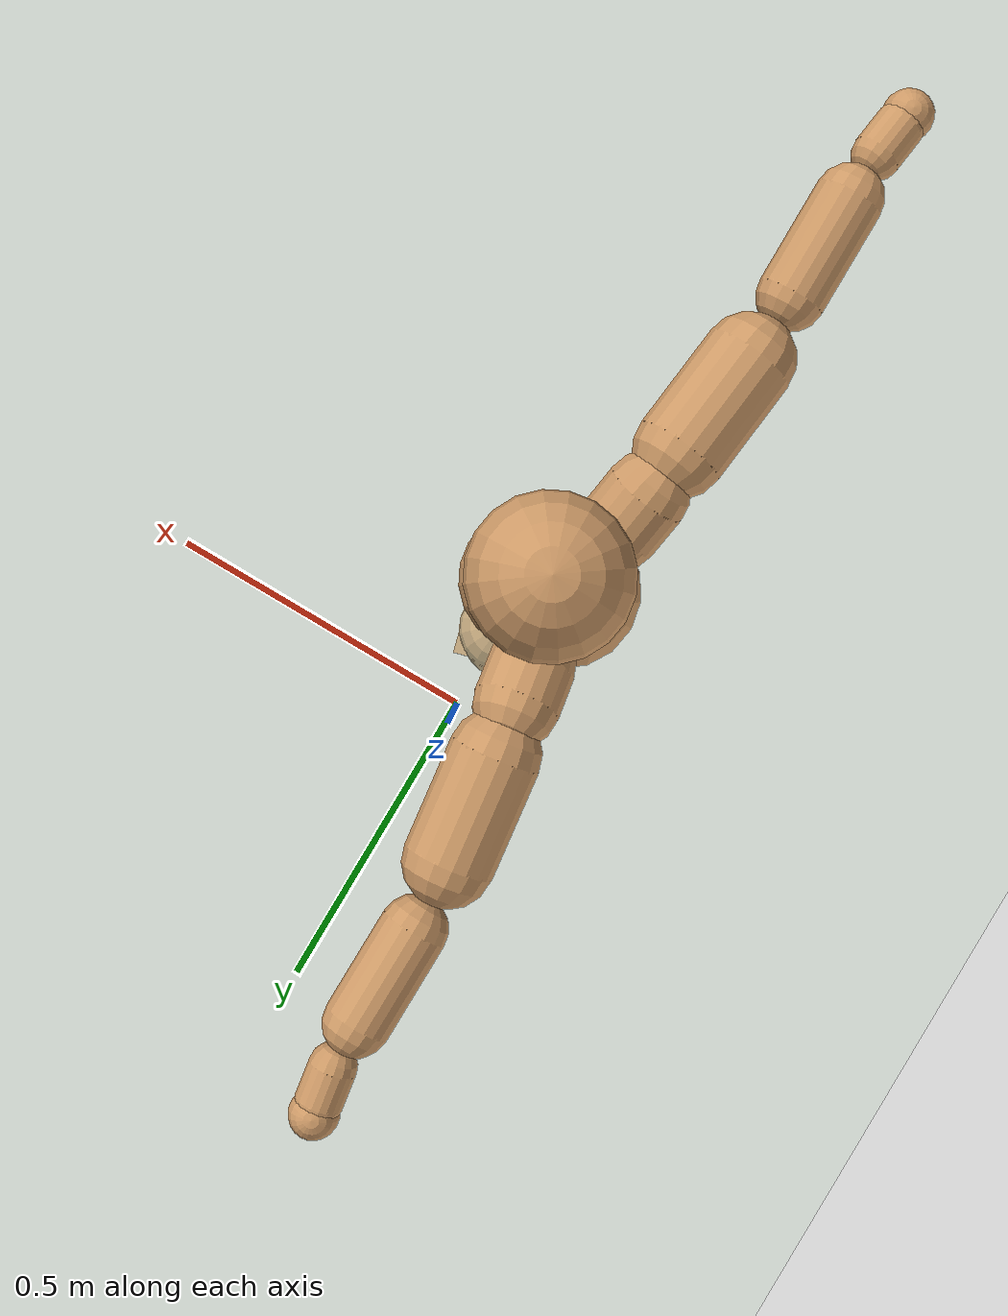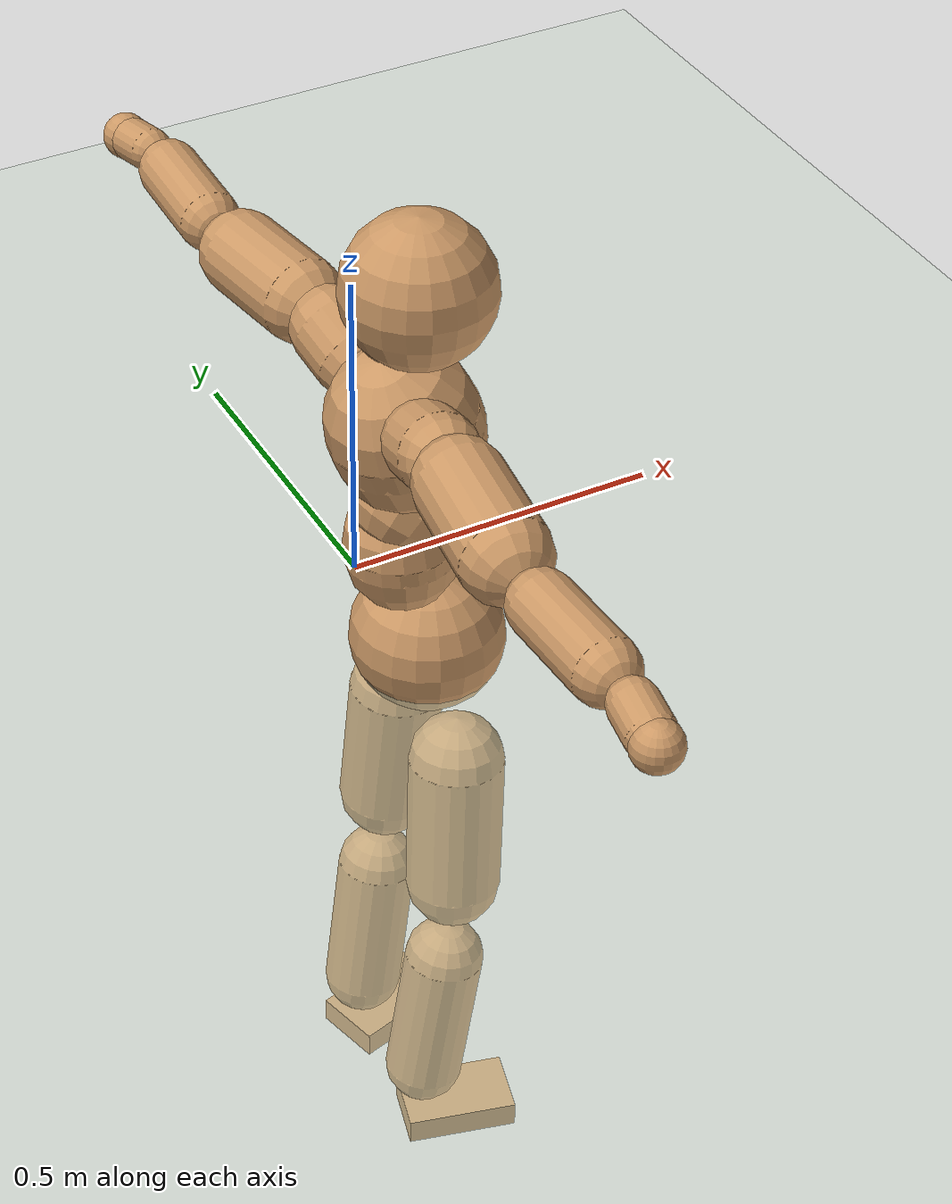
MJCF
<mujoco model="humanoid">
  <compiler coordinate="local"/>
  <default>
    <joint damping="0.0" armature="0.01" stiffness="0.0" limited="true"/>
    <geom conaffinity="1" condim="3" contype="7" margin="0.001" rgba="0.8 0.6 .4 1"/>
  </default>
  <asset>
    <texture type="skybox" builtin="gradient" rgb1=".4 .5 .6" rgb2="0 0 0" width="100" height="100"/>
    <texture builtin="flat" height="1278" mark="cross" markrgb="1 1 1" name="texgeom" random="0.01" rgb1="0.8 0.6 0.4" rgb2="0.8 0.6 0.4" type="cube" width="127"/>
    <texture builtin="checker" height="100" name="texplane" rgb1="0 0 0" rgb2="0.8 0.8 0.8" type="2d" width="100"/>
    <material name="MatPlane" reflectance="0.5" shininess="1" specular="1" texrepeat="60 60" texture="texplane"/>
    <material name="geom" texture="texgeom" texuniform="true"/>
  </asset>
  <worldbody>
    <light cutoff="100" diffuse="1 1 1" dir="-0 0 -1.3" directional="true" exponent="1" pos="0 0 1.3" specular=".1 .1 .1"/>
    <geom conaffinity="1" condim="3" name="floor" pos="0 0 0" rgba="0.8 0.9 0.8 1" size="100 100 .2" type="plane" material="MatPlane"/>
    <body name="Pelvis" pos="0.0007 -0.2293 0.0468">
      <freejoint name="Pelvis"/>
      <geom type="sphere" contype="1" conaffinity="1" density="500" size="0.1137" pos="0.0000 0.0000 0.0000" name="Pelvis"/>
      <body name="L_Hip" pos="0.0028 0.0865 -0.0977">
        <joint name="L_Hip_x" type="hinge" pos="0 0 0" axis="1 0 0" stiffness="800" damping="80" armature="0.02" range="-180.0000 180.0000"/>
        <joint name="L_Hip_y" type="hinge" pos="0 0 0" axis="0 1 0" stiffness="800" damping="80" armature="0.02" range="-180.0000 180.0000"/>
        <joint name="L_Hip_z" type="hinge" pos="0 0 0" axis="0 0 1" stiffness="800" damping="80" armature="0.02" range="-180.0000 180.0000"/>
        <geom type="capsule" contype="1" conaffinity="1" density="500" fromto="-0.0043 0.0048 -0.0734 -0.0171 0.0191 -0.2934" size="0.0712" name="L_Hip"/>
        <body name="L_Knee" pos="-0.0214 0.0239 -0.3668">
          <joint name="L_Knee_x" type="hinge" pos="0 0 0" axis="1 0 0" stiffness="800" damping="80" armature="0.02" range="-180.0000 180.0000"/>
          <joint name="L_Knee_y" type="hinge" pos="0 0 0" axis="0 1 0" stiffness="800" damping="80" armature="0.02" range="-180.0000 180.0000"/>
          <joint name="L_Knee_z" type="hinge" pos="0 0 0" axis="0 0 1" stiffness="800" damping="80" armature="0.02" range="-180.0000 180.0000"/>
          <geom type="capsule" contype="1" conaffinity="1" density="500" fromto="-0.0103 -0.0021 -0.0785 -0.0411 -0.0083 -0.3141" size="0.06" name="L_Knee"/>
          <body name="L_Ankle" pos="-0.0514 -0.0104 -0.3926">
            <joint name="L_Ankle_x" type="hinge" pos="0 0 0" axis="1 0 0" stiffness="800" damping="80" armature="0.02" range="-180.0000 180.0000"/>
            <joint name="L_Ankle_y" type="hinge" pos="0 0 0" axis="0 1 0" stiffness="800" damping="80" armature="0.02" range="-180.0000 180.0000"/>
            <joint name="L_Ankle_z" type="hinge" pos="0 0 0" axis="0 0 1" stiffness="800" damping="80" armature="0.02" range="-180.0000 180.0000"/>
            <geom type="box" contype="1" conaffinity="1" density="500" pos="0.0583 0.0155 -0.0290" size="0.0842 0.0535 0.0218" quat="0.9916 0.0000 0.0000 0.1297" name="L_Ankle"/>
            <body name="L_Toe" pos="0.1166 0.031 -0.058">
              <joint name="L_Toe_x" type="hinge" pos="0 0 0" axis="1 0 0" stiffness="500" damping="50" armature="0.02" range="-180.0000 180.0000"/>
              <joint name="L_Toe_y" type="hinge" pos="0 0 0" axis="0 1 0" stiffness="500" damping="50" armature="0.02" range="-180.0000 180.0000"/>
              <joint name="L_Toe_z" type="hinge" pos="0 0 0" axis="0 0 1" stiffness="500" damping="50" armature="0.02" range="-180.0000 180.0000"/>
              <geom type="box" contype="1" conaffinity="1" density="500" pos="0.0000 0.0000 0.0297" size="0.001 0.0026 0.0011" quat="0.9908 0.0000 0.0000 0.1354" name="L_Toe"/>
            </body>
          </body>
        </body>
      </body>
      <body name="R_Hip" pos="0.0057 -0.0837 -0.0985">
        <joint name="R_Hip_x" type="hinge" pos="0 0 0" axis="1 0 0" stiffness="800" damping="80" armature="0.02" range="-180.0000 180.0000"/>
        <joint name="R_Hip_y" type="hinge" pos="0 0 0" axis="0 1 0" stiffness="800" damping="80" armature="0.02" range="-180.0000 180.0000"/>
        <joint name="R_Hip_z" type="hinge" pos="0 0 0" axis="0 0 1" stiffness="800" damping="80" armature="0.02" range="-180.0000 180.0000"/>
        <geom type="capsule" contype="1" conaffinity="1" density="500" fromto="-0.0045 -0.0064 -0.0742 -0.0181 -0.0255 -0.2969" size="0.0705" name="R_Hip"/>
        <body name="R_Knee" pos="-0.0226 -0.0319 -0.3711">
          <joint name="R_Knee_x" type="hinge" pos="0 0 0" axis="1 0 0" stiffness="800" damping="80" armature="0.02" range="-180.0000 180.0000"/>
          <joint name="R_Knee_y" type="hinge" pos="0 0 0" axis="0 1 0" stiffness="800" damping="80" armature="0.02" range="-180.0000 180.0000"/>
          <joint name="R_Knee_z" type="hinge" pos="0 0 0" axis="0 0 1" stiffness="800" damping="80" armature="0.02" range="-180.0000 180.0000"/>
          <geom type="capsule" contype="1" conaffinity="1" density="500" fromto="-0.0102 0.0025 -0.0791 -0.0406 0.0099 -0.3163" size="0.0599" name="R_Knee"/>
          <body name="R_Ankle" pos="-0.0508 0.0124 -0.3954">
            <joint name="R_Ankle_x" type="hinge" pos="0 0 0" axis="1 0 0" stiffness="800" damping="80" armature="0.02" range="-180.0000 180.0000"/>
            <joint name="R_Ankle_y" type="hinge" pos="0 0 0" axis="0 1 0" stiffness="800" damping="80" armature="0.02" range="-180.0000 180.0000"/>
            <joint name="R_Ankle_z" type="hinge" pos="0 0 0" axis="0 0 1" stiffness="800" damping="80" armature="0.02" range="-180.0000 180.0000"/>
            <geom type="box" contype="1" conaffinity="1" density="500" pos="0.0608 -0.0158 -0.0248" size="0.0855 0.0513 0.0221" quat="0.9919 0.0000 0.0000 -0.1269" name="R_Ankle"/>
            <body name="R_Toe" pos="0.1217 -0.0317 -0.0497">
              <joint name="R_Toe_x" type="hinge" pos="0 0 0" axis="1 0 0" stiffness="500" damping="50" armature="0.02" range="-180.0000 180.0000"/>
              <joint name="R_Toe_y" type="hinge" pos="0 0 0" axis="0 1 0" stiffness="500" damping="50" armature="0.02" range="-180.0000 180.0000"/>
              <joint name="R_Toe_z" type="hinge" pos="0 0 0" axis="0 0 1" stiffness="500" damping="50" armature="0.02" range="-180.0000 180.0000"/>
              <geom type="box" contype="1" conaffinity="1" density="500" pos="0.0000 0.0000 0.0268" size="0.001 0.0025 0.0012" quat="0.9931 0.0000 0.0000 -0.1174" name="R_Toe"/>
            </body>
          </body>
        </body>
      </body>
      <body name="Torso" pos="-0.0384 -0.0022 0.1137">
        <joint name="Torso_x" type="hinge" pos="0 0 0" axis="1 0 0" stiffness="1000" damping="100" armature="0.02" range="-180.0000 180.0000"/>
        <joint name="Torso_y" type="hinge" pos="0 0 0" axis="0 1 0" stiffness="1000" damping="100" armature="0.02" range="-180.0000 180.0000"/>
        <joint name="Torso_z" type="hinge" pos="0 0 0" axis="0 0 1" stiffness="1000" damping="100" armature="0.02" range="-180.0000 180.0000"/>
        <geom type="capsule" contype="1" conaffinity="1" density="500" fromto="-0.0042 0.0018 0.0725 -0.0028 0.0012 0.0483" size="0.082119" name="Torso"/>
        <body name="Spine" pos="-0.0071 0.0029 0.1208">
          <joint name="Spine_x" type="hinge" pos="0 0 0" axis="1 0 0" stiffness="1000" damping="100" armature="0.02" range="-180.0000 180.0000"/>
          <joint name="Spine_y" type="hinge" pos="0 0 0" axis="0 1 0" stiffness="1000" damping="100" armature="0.02" range="-180.0000 180.0000"/>
          <joint name="Spine_z" type="hinge" pos="0 0 0" axis="0 0 1" stiffness="1000" damping="100" armature="0.02" range="-180.0000 180.0000"/>
          <geom type="capsule" contype="1" conaffinity="1" density="500" fromto="0.0230 0.0007 0.0317 0.0153 0.0004 0.0212" size="0.082956" name="Spine"/>
          <body name="Chest" pos="0.0383 0.0011 0.0529">
            <joint name="Chest_x" type="hinge" pos="0 0 0" axis="1 0 0" stiffness="1000" damping="100" armature="0.02" range="-180.0000 180.0000"/>
            <joint name="Chest_y" type="hinge" pos="0 0 0" axis="0 1 0" stiffness="1000" damping="100" armature="0.02" range="-180.0000 180.0000"/>
            <joint name="Chest_z" type="hinge" pos="0 0 0" axis="0 0 1" stiffness="1000" damping="100" armature="0.02" range="-180.0000 180.0000"/>
            <geom type="capsule" contype="1" conaffinity="1" density="500" fromto="-0.0325 -0.0004 0.0996 -0.0217 -0.0003 0.0664" size="0.10788" name="Chest"/>
            <body name="Neck" pos="-0.0634 -0.0007 0.2337">
              <joint name="Neck_x" type="hinge" pos="0 0 0" axis="1 0 0" stiffness="500" damping="50" armature="0.02" range="-180.0000 180.0000"/>
              <joint name="Neck_y" type="hinge" pos="0 0 0" axis="0 1 0" stiffness="500" damping="50" armature="0.02" range="-180.0000 180.0000"/>
              <joint name="Neck_z" type="hinge" pos="0 0 0" axis="0 0 1" stiffness="500" damping="50" armature="0.02" range="-180.0000 180.0000"/>
              <geom type="capsule" contype="1" conaffinity="1" density="500" fromto="0.0110 -0.0000 0.0128 0.0439 -0.0000 0.0511" size="0.042873" name="Neck"/>
              <body name="Head" pos="0.0549 0 0.0638">
                <joint name="Head_x" type="hinge" pos="0 0 0" axis="1 0 0" stiffness="500" damping="50" armature="0.02" range="-180.0000 180.0000"/>
                <joint name="Head_y" type="hinge" pos="0 0 0" axis="0 1 0" stiffness="500" damping="50" armature="0.02" range="-180.0000 180.0000"/>
                <joint name="Head_z" type="hinge" pos="0 0 0" axis="0 0 1" stiffness="500" damping="50" armature="0.02" range="-180.0000 180.0000"/>
                <geom type="sphere" contype="1" conaffinity="1" density="500" size="0.1079" pos="0.0000 0.0000 0.0000" name="Head"/>
              </body>
            </body>
            <body name="L_Thorax" pos="-0.0467 0.0866 0.133">
              <joint name="L_Thorax_x" type="hinge" pos="0 0 0" axis="1 0 0" stiffness="500" damping="50" armature="0.02" range="-180.0000 180.0000"/>
              <joint name="L_Thorax_y" type="hinge" pos="0 0 0" axis="0 1 0" stiffness="500" damping="50" armature="0.02" range="-180.0000 180.0000"/>
              <joint name="L_Thorax_z" type="hinge" pos="0 0 0" axis="0 0 1" stiffness="500" damping="50" armature="0.02" range="-180.0000 180.0000"/>
              <geom type="capsule" contype="1" conaffinity="1" density="500" fromto="-0.0028 0.0185 0.0064 -0.0112 0.0738 0.0254" size="0.0585" name="L_Thorax"/>
              <body name="L_Shoulder" pos="-0.014 0.0923 0.0318">
                <joint name="L_Shoulder_x" type="hinge" pos="0 0 0" axis="1 0 0" stiffness="500" damping="50" armature="0.02" range="-720.0000 720.0000"/>
                <joint name="L_Shoulder_y" type="hinge" pos="0 0 0" axis="0 1 0" stiffness="500" damping="50" armature="0.02" range="-720.0000 720.0000"/>
                <joint name="L_Shoulder_z" type="hinge" pos="0 0 0" axis="0 0 1" stiffness="500" damping="50" armature="0.02" range="-720.0000 720.0000"/>
                <geom type="capsule" contype="1" conaffinity="1" density="500" fromto="-0.0065 0.0507 -0.0015 -0.0259 0.2028 -0.0061" size="0.0623" name="L_Shoulder"/>
                <body name="L_Elbow" pos="-0.0324 0.2535 -0.0076">
                  <joint name="L_Elbow_x" type="hinge" pos="0 0 0" axis="1 0 0" stiffness="500" damping="50" armature="0.02" range="-720.0000 720.0000"/>
                  <joint name="L_Elbow_y" type="hinge" pos="0 0 0" axis="0 1 0" stiffness="500" damping="50" armature="0.02" range="-720.0000 720.0000"/>
                  <joint name="L_Elbow_z" type="hinge" pos="0 0 0" axis="0 0 1" stiffness="500" damping="50" armature="0.02" range="-720.0000 720.0000"/>
                  <geom type="capsule" contype="1" conaffinity="1" density="500" fromto="0.0005 0.0475 0.0020 0.0021 0.1902 0.0081" size="0.0457" name="L_Elbow"/>
                  <body name="L_Wrist" pos="0.0026 0.2377 0.0101">
                    <joint name="L_Wrist_x" type="hinge" pos="0 0 0" axis="1 0 0" stiffness="300" damping="30" armature="0.02" range="-180.0000 180.0000"/>
                    <joint name="L_Wrist_y" type="hinge" pos="0 0 0" axis="0 1 0" stiffness="300" damping="30" armature="0.02" range="-180.0000 180.0000"/>
                    <joint name="L_Wrist_z" type="hinge" pos="0 0 0" axis="0 0 1" stiffness="300" damping="30" armature="0.02" range="-180.0000 180.0000"/>
                    <geom type="capsule" contype="1" conaffinity="1" density="500" fromto="-0.0027 0.0169 -0.0020 -0.0109 0.0677 -0.0079" size="0.0328" name="L_Wrist"/>
                    <body name="L_Hand" pos="-0.0136 0.0846 -0.0099">
                      <joint name="L_Hand_x" type="hinge" pos="0 0 0" axis="1 0 0" stiffness="300" damping="30" armature="0.02" range="-180.0000 180.0000"/>
                      <joint name="L_Hand_y" type="hinge" pos="0 0 0" axis="0 1 0" stiffness="300" damping="30" armature="0.02" range="-180.0000 180.0000"/>
                      <joint name="L_Hand_z" type="hinge" pos="0 0 0" axis="0 0 1" stiffness="300" damping="30" armature="0.02" range="-180.0000 180.0000"/>
                      <geom type="sphere" contype="1" conaffinity="1" density="500" size="0.0343" pos="0.0000 0.0000 0.0000" name="L_Hand"/>
                    </body>
                  </body>
                </body>
              </body>
            </body>
            <body name="R_Thorax" pos="-0.0526 -0.088 0.1314">
              <joint name="R_Thorax_x" type="hinge" pos="0 0 0" axis="1 0 0" stiffness="500" damping="50" armature="0.02" range="-180.0000 180.0000"/>
              <joint name="R_Thorax_y" type="hinge" pos="0 0 0" axis="0 1 0" stiffness="500" damping="50" armature="0.02" range="-180.0000 180.0000"/>
              <joint name="R_Thorax_z" type="hinge" pos="0 0 0" axis="0 0 1" stiffness="500" damping="50" armature="0.02" range="-180.0000 180.0000"/>
              <geom type="capsule" contype="1" conaffinity="1" density="500" fromto="-0.0027 -0.0190 0.0067 -0.0107 -0.0760 0.0267" size="0.0576" name="R_Thorax"/>
              <body name="R_Shoulder" pos="-0.0134 -0.095 0.0334">
                <joint name="R_Shoulder_x" type="hinge" pos="0 0 0" axis="1 0 0" stiffness="500" damping="50" armature="0.02" range="-720.0000 720.0000"/>
                <joint name="R_Shoulder_y" type="hinge" pos="0 0 0" axis="0 1 0" stiffness="500" damping="50" armature="0.02" range="-720.0000 720.0000"/>
                <joint name="R_Shoulder_z" type="hinge" pos="0 0 0" axis="0 0 1" stiffness="500" damping="50" armature="0.02" range="-720.0000 720.0000"/>
                <geom type="capsule" contype="1" conaffinity="1" density="500" fromto="-0.0056 -0.0499 -0.0025 -0.0223 -0.1995 -0.0099" size="0.0634" name="R_Shoulder"/>
                <body name="R_Elbow" pos="-0.0279 -0.2494 -0.0124">
                  <joint name="R_Elbow_x" type="hinge" pos="0 0 0" axis="1 0 0" stiffness="500" damping="50" armature="0.02" range="-720.0000 720.0000"/>
                  <joint name="R_Elbow_y" type="hinge" pos="0 0 0" axis="0 1 0" stiffness="500" damping="50" armature="0.02" range="-720.0000 720.0000"/>
                  <joint name="R_Elbow_z" type="hinge" pos="0 0 0" axis="0 0 1" stiffness="500" damping="50" armature="0.02" range="-720.0000 720.0000"/>
                  <geom type="capsule" contype="1" conaffinity="1" density="500" fromto="0.0003 -0.0490 0.0027 0.0012 -0.1961 0.0109" size="0.0463" name="R_Elbow"/>
                  <body name="R_Wrist" pos="0.0016 -0.2452 0.0136">
                    <joint name="R_Wrist_x" type="hinge" pos="0 0 0" axis="1 0 0" stiffness="300" damping="30" armature="0.02" range="-180.0000 180.0000"/>
                    <joint name="R_Wrist_y" type="hinge" pos="0 0 0" axis="0 1 0" stiffness="300" damping="30" armature="0.02" range="-180.0000 180.0000"/>
                    <joint name="R_Wrist_z" type="hinge" pos="0 0 0" axis="0 0 1" stiffness="300" damping="30" armature="0.02" range="-180.0000 180.0000"/>
                    <geom type="capsule" contype="1" conaffinity="1" density="500" fromto="-0.0022 -0.0170 -0.0015 -0.0089 -0.0680 -0.0061" size="0.0336" name="R_Wrist"/>
                    <body name="R_Hand" pos="-0.0112 -0.085 -0.0076">
                      <joint name="R_Hand_x" type="hinge" pos="0 0 0" axis="1 0 0" stiffness="300" damping="30" armature="0.02" range="-180.0000 180.0000"/>
                      <joint name="R_Hand_y" type="hinge" pos="0 0 0" axis="0 1 0" stiffness="300" damping="30" armature="0.02" range="-180.0000 180.0000"/>
                      <joint name="R_Hand_z" type="hinge" pos="0 0 0" axis="0 0 1" stiffness="300" damping="30" armature="0.02" range="-180.0000 180.0000"/>
                      <geom type="sphere" contype="1" conaffinity="1" density="500" size="0.0345" pos="0.0000 0.0000 0.0000" name="R_Hand"/>
                    </body>
                  </body>
                </body>
              </body>
            </body>
          </body>
        </body>
      </body>
    </body>
  </worldbody>
  <actuator>
    <motor name="L_Hip_x" joint="L_Hip_x" gear="500"/>
    <motor name="L_Hip_y" joint="L_Hip_y" gear="500"/>
    <motor name="L_Hip_z" joint="L_Hip_z" gear="500"/>
    <motor name="L_Knee_x" joint="L_Knee_x" gear="500"/>
    <motor name="L_Knee_y" joint="L_Knee_y" gear="500"/>
    <motor name="L_Knee_z" joint="L_Knee_z" gear="500"/>
    <motor name="L_Ankle_x" joint="L_Ankle_x" gear="500"/>
    <motor name="L_Ankle_y" joint="L_Ankle_y" gear="500"/>
    <motor name="L_Ankle_z" joint="L_Ankle_z" gear="500"/>
    <motor name="L_Toe_x" joint="L_Toe_x" gear="500"/>
    <motor name="L_Toe_y" joint="L_Toe_y" gear="500"/>
    <motor name="L_Toe_z" joint="L_Toe_z" gear="500"/>
    <motor name="R_Hip_x" joint="R_Hip_x" gear="500"/>
    <motor name="R_Hip_y" joint="R_Hip_y" gear="500"/>
    <motor name="R_Hip_z" joint="R_Hip_z" gear="500"/>
    <motor name="R_Knee_x" joint="R_Knee_x" gear="500"/>
    <motor name="R_Knee_y" joint="R_Knee_y" gear="500"/>
    <motor name="R_Knee_z" joint="R_Knee_z" gear="500"/>
    <motor name="R_Ankle_x" joint="R_Ankle_x" gear="500"/>
    <motor name="R_Ankle_y" joint="R_Ankle_y" gear="500"/>
    <motor name="R_Ankle_z" joint="R_Ankle_z" gear="500"/>
    <motor name="R_Toe_x" joint="R_Toe_x" gear="500"/>
    <motor name="R_Toe_y" joint="R_Toe_y" gear="500"/>
    <motor name="R_Toe_z" joint="R_Toe_z" gear="500"/>
    <motor name="Torso_x" joint="Torso_x" gear="500"/>
    <motor name="Torso_y" joint="Torso_y" gear="500"/>
    <motor name="Torso_z" joint="Torso_z" gear="500"/>
    <motor name="Spine_x" joint="Spine_x" gear="500"/>
    <motor name="Spine_y" joint="Spine_y" gear="500"/>
    <motor name="Spine_z" joint="Spine_z" gear="500"/>
    <motor name="Chest_x" joint="Chest_x" gear="500"/>
    <motor name="Chest_y" joint="Chest_y" gear="500"/>
    <motor name="Chest_z" joint="Chest_z" gear="500"/>
    <motor name="Neck_x" joint="Neck_x" gear="500"/>
    <motor name="Neck_y" joint="Neck_y" gear="500"/>
    <motor name="Neck_z" joint="Neck_z" gear="500"/>
    <motor name="Head_x" joint="Head_x" gear="500"/>
    <motor name="Head_y" joint="Head_y" gear="500"/>
    <motor name="Head_z" joint="Head_z" gear="500"/>
    <motor name="L_Thorax_x" joint="L_Thorax_x" gear="500"/>
    <motor name="L_Thorax_y" joint="L_Thorax_y" gear="500"/>
    <motor name="L_Thorax_z" joint="L_Thorax_z" gear="500"/>
    <motor name="L_Shoulder_x" joint="L_Shoulder_x" gear="500"/>
    <motor name="L_Shoulder_y" joint="L_Shoulder_y" gear="500"/>
    <motor name="L_Shoulder_z" joint="L_Shoulder_z" gear="500"/>
    <motor name="L_Elbow_x" joint="L_Elbow_x" gear="500"/>
    <motor name="L_Elbow_y" joint="L_Elbow_y" gear="500"/>
    <motor name="L_Elbow_z" joint="L_Elbow_z" gear="500"/>
    <motor name="L_Wrist_x" joint="L_Wrist_x" gear="500"/>
    <motor name="L_Wrist_y" joint="L_Wrist_y" gear="500"/>
    <motor name="L_Wrist_z" joint="L_Wrist_z" gear="500"/>
    <motor name="L_Hand_x" joint="L_Hand_x" gear="500"/>
    <motor name="L_Hand_y" joint="L_Hand_y" gear="500"/>
    <motor name="L_Hand_z" joint="L_Hand_z" gear="500"/>
    <motor name="R_Thorax_x" joint="R_Thorax_x" gear="500"/>
    <motor name="R_Thorax_y" joint="R_Thorax_y" gear="500"/>
    <motor name="R_Thorax_z" joint="R_Thorax_z" gear="500"/>
    <motor name="R_Shoulder_x" joint="R_Shoulder_x" gear="500"/>
    <motor name="R_Shoulder_y" joint="R_Shoulder_y" gear="500"/>
    <motor name="R_Shoulder_z" joint="R_Shoulder_z" gear="500"/>
    <motor name="R_Elbow_x" joint="R_Elbow_x" gear="500"/>
    <motor name="R_Elbow_y" joint="R_Elbow_y" gear="500"/>
    <motor name="R_Elbow_z" joint="R_Elbow_z" gear="500"/>
    <motor name="R_Wrist_x" joint="R_Wrist_x" gear="500"/>
    <motor name="R_Wrist_y" joint="R_Wrist_y" gear="500"/>
    <motor name="R_Wrist_z" joint="R_Wrist_z" gear="500"/>
    <motor name="R_Hand_x" joint="R_Hand_x" gear="500"/>
    <motor name="R_Hand_y" joint="R_Hand_y" gear="500"/>
    <motor name="R_Hand_z" joint="R_Hand_z" gear="500"/>
  </actuator>
  <contact>
    <exclude body1="Torso" body2="Chest"/>
    <exclude body1="Head" body2="Chest"/>
    <exclude body1="R_Knee" body2="R_Toe"/>
    <exclude body1="R_Knee" body2="L_Ankle"/>
    <exclude body1="R_Knee" body2="L_Toe"/>
    <exclude body1="L_Knee" body2="L_Toe"/>
    <exclude body1="L_Knee" body2="R_Ankle"/>
    <exclude body1="L_Knee" body2="R_Toe"/>
    <exclude body1="L_Shoulder" body2="Chest"/>
    <exclude body1="R_Shoulder" body2="Chest"/>
  </contact>
  <sensor/>
  <size njmax="700" nconmax="700"/>
</mujoco>
